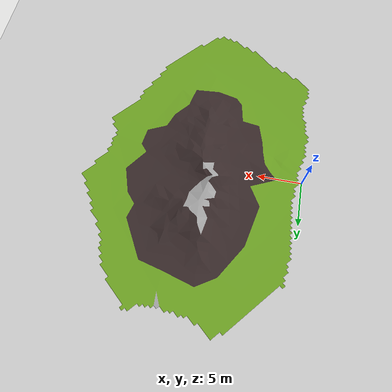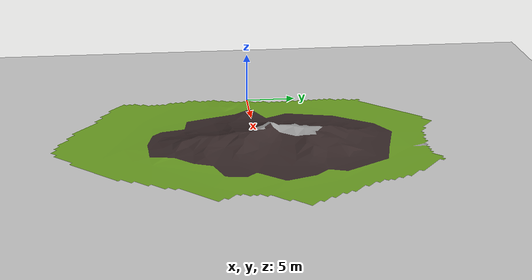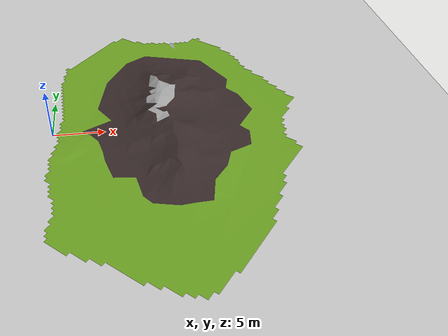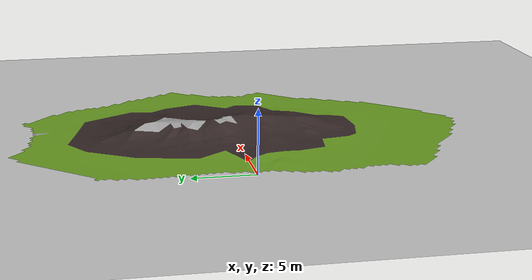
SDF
<?xml version="1.0" ?>
<sdf version="1.4">
  <world name="default">
    <physics type='ode'>
      <gravity>0 0 -9.81</gravity>
      <!-- max step size has to be a multiple of the desired task rate-->
      <max_step_size>0.001</max_step_size>
      <real_time_factor>1</real_time_factor>
    </physics>
    <!-- A global light source -->
    <include>
      <uri>model://sun</uri>
    </include>
    <!-- A ground plane -->
    <include>
      <uri>model://ground_plane</uri>
    </include>
    <include>
      <name>Vital Terrain</name>
      <uri>model://vital_terrain</uri>
      <pose>10 0 0 0 0 -0.720  </pose>
    </include>
  </world>
</sdf>

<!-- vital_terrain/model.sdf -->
<sdf version="1.4">
<model name="shamel_terrain">
<static>true</static>
<link name="link">
<pose>0 0 0 0 0 0</pose>
<collision name="collision"> <geometry> <mesh> <uri>model://vital_terrain/mesh/terrain.dae</uri> <scale>1 1 0.25</scale> </mesh> </geometry> </collision>
<visual name="visual">       <geometry> <mesh> <uri>model://vital_terrain/mesh/terrain.dae</uri> <scale>1 1 0.25</scale> </mesh> </geometry> </visual>
</link>
</model>
</sdf>
